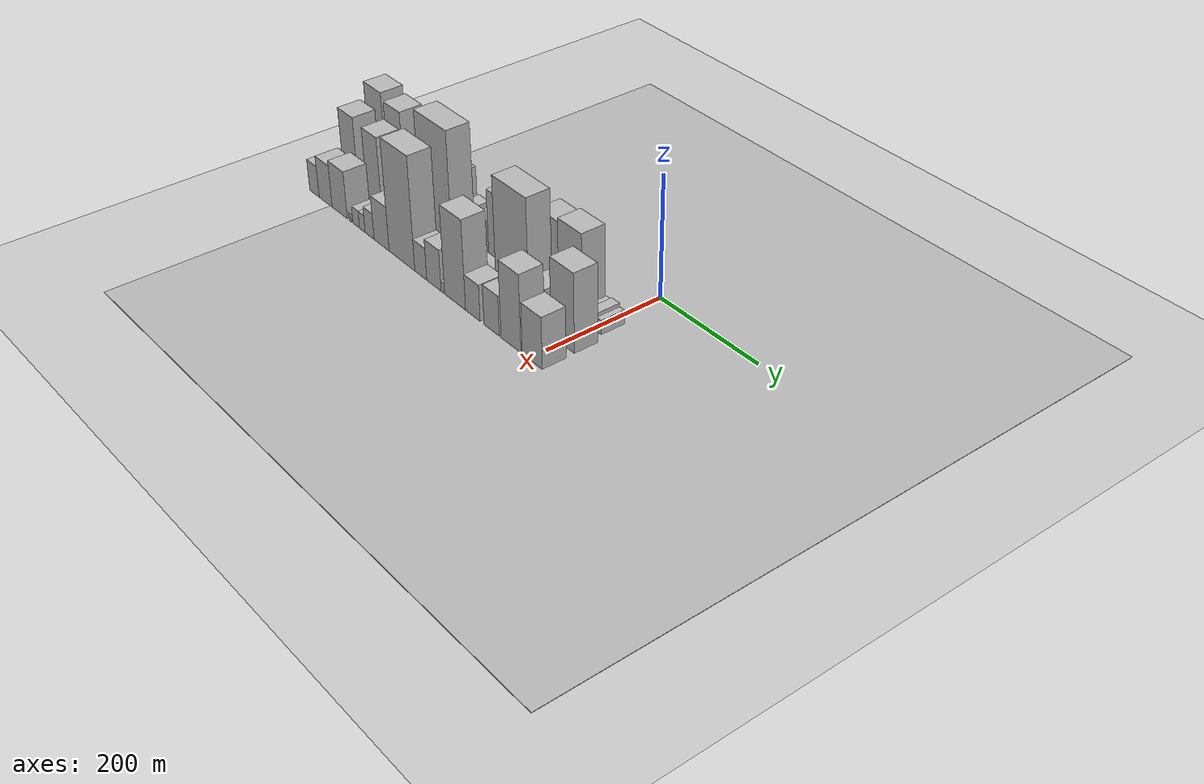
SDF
<sdf version="1.6">
 <world name="default">
  <include><name>ground_plane_1</name><uri>model://HANNAS_ground_plane</uri></include>
  <include>
   <name>ground_plane_2</name>
   <uri>model://HANNAS_ground_plane</uri>
   <pose>100 0 0  0 0 0</pose>
  </include>
  <model name="building_1">
   <static>1</static>
   <pose>100.0000 -536.4117 0 0.000000 0.000000 0.000000</pose>
   <link name="link">
    <pose>0 0 75.00 0 0 0</pose>
    <collision name="collision"><geometry><box><size>40.0000 47.1765 150.0000</size></box></geometry></collision>
    <visual name="visual">
     <cast_shadows>0</cast_shadows>
     <geometry><box><size>40.0000 47.1765 150.0000</size></box></geometry>
     <material>
      <script>
       <uri>model://HANNAS_wall/materials/scripts</uri>
       <uri>model://HANNAS_wall/materials/textures</uri>
       <name>vrc/HANNAS_wall</name>
      </script>
     </material>
    </visual>
   </link>
  </model>
  <model name="building_2">
   <static>1</static>
   <pose>100.0000 -484.9652 0 0.000000 0.000000 0.000000</pose>
   <link name="link">
    <pose>0 0 69.00 0 0 0</pose>
    <collision name="collision"><geometry><box><size>40.0000 43.7165 138.0000</size></box></geometry></collision>
    <visual name="visual">
     <cast_shadows>0</cast_shadows>
     <geometry><box><size>40.0000 43.7165 138.0000</size></box></geometry>
     <material>
      <script>
       <uri>model://HANNAS_wall/materials/scripts</uri>
       <uri>model://HANNAS_wall/materials/textures</uri>
       <name>vrc/HANNAS_wall</name>
      </script>
     </material>
    </visual>
   </link>
  </model>
  <model name="building_3">
   <static>1</static>
   <pose>100.0000 -458.6917 0 0.000000 0.000000 0.000000</pose>
   <link name="link">
    <pose>0 0 10.50 0 0 0</pose>
    <collision name="collision"><geometry><box><size>40.0000 8.8305 21.0000</size></box></geometry></collision>
    <visual name="visual">
     <cast_shadows>0</cast_shadows>
     <geometry><box><size>40.0000 8.8305 21.0000</size></box></geometry>
     <material>
      <script>
       <uri>model://HANNAS_wall/materials/scripts</uri>
       <uri>model://HANNAS_wall/materials/textures</uri>
       <name>vrc/HANNAS_wall</name>
      </script>
     </material>
    </visual>
   </link>
  </model>
  <model name="building_4">
   <static>1</static>
   <pose>100.0000 -440.6678 0 0.000000 0.000000 0.000000</pose>
   <link name="link">
    <pose>0 0 25.50 0 0 0</pose>
    <collision name="collision"><geometry><box><size>40.0000 27.2174 51.0000</size></box></geometry></collision>
    <visual name="visual">
     <cast_shadows>0</cast_shadows>
     <geometry><box><size>40.0000 27.2174 51.0000</size></box></geometry>
     <material>
      <script>
       <uri>model://HANNAS_wall/materials/scripts</uri>
       <uri>model://HANNAS_wall/materials/textures</uri>
       <name>vrc/HANNAS_wall</name>
      </script>
     </material>
    </visual>
   </link>
  </model>
  <model name="building_5">
   <static>1</static>
   <pose>100.0000 -422.9200 0 0.000000 0.000000 0.000000</pose>
   <link name="link">
    <pose>0 0 9.00 0 0 0</pose>
    <collision name="collision"><geometry><box><size>40.0000 8.2782 18.0000</size></box></geometry></collision>
    <visual name="visual">
     <cast_shadows>0</cast_shadows>
     <geometry><box><size>40.0000 8.2782 18.0000</size></box></geometry>
     <material>
      <script>
       <uri>model://HANNAS_wall/materials/scripts</uri>
       <uri>model://HANNAS_wall/materials/textures</uri>
       <name>vrc/HANNAS_wall</name>
      </script>
     </material>
    </visual>
   </link>
  </model>
  <model name="building_6">
   <static>1</static>
   <pose>100.0000 -398.1051 0 0.000000 0.000000 0.000000</pose>
   <link name="link">
    <pose>0 0 27.00 0 0 0</pose>
    <collision name="collision"><geometry><box><size>40.0000 29.3515 54.0000</size></box></geometry></collision>
    <visual name="visual">
     <cast_shadows>0</cast_shadows>
     <geometry><box><size>40.0000 29.3515 54.0000</size></box></geometry>
     <material>
      <script>
       <uri>model://HANNAS_wall/materials/scripts</uri>
       <uri>model://HANNAS_wall/materials/textures</uri>
       <name>vrc/HANNAS_wall</name>
      </script>
     </material>
    </visual>
   </link>
  </model>
  <model name="building_7">
   <static>1</static>
   <pose>100.0000 -369.2697 0 0.000000 0.000000 0.000000</pose>
   <link name="link">
    <pose>0 0 24.00 0 0 0</pose>
    <collision name="collision"><geometry><box><size>40.0000 28.3194 48.0000</size></box></geometry></collision>
    <visual name="visual">
     <cast_shadows>0</cast_shadows>
     <geometry><box><size>40.0000 28.3194 48.0000</size></box></geometry>
     <material>
      <script>
       <uri>model://HANNAS_wall/materials/scripts</uri>
       <uri>model://HANNAS_wall/materials/textures</uri>
       <name>vrc/HANNAS_wall</name>
      </script>
     </material>
    </visual>
   </link>
  </model>
  <model name="building_8">
   <static>1</static>
   <pose>100.0000 -340.9920 0 0.000000 0.000000 0.000000</pose>
   <link name="link">
    <pose>0 0 46.50 0 0 0</pose>
    <collision name="collision"><geometry><box><size>40.0000 28.2359 93.0000</size></box></geometry></collision>
    <visual name="visual">
     <cast_shadows>0</cast_shadows>
     <geometry><box><size>40.0000 28.2359 93.0000</size></box></geometry>
     <material>
      <script>
       <uri>model://HANNAS_wall/materials/scripts</uri>
       <uri>model://HANNAS_wall/materials/textures</uri>
       <name>vrc/HANNAS_wall</name>
      </script>
     </material>
    </visual>
   </link>
  </model>
  <model name="building_9">
   <static>1</static>
   <pose>100.0000 -308.1713 0 0.000000 0.000000 0.000000</pose>
   <link name="link">
    <pose>0 0 24.00 0 0 0</pose>
    <collision name="collision"><geometry><box><size>40.0000 25.4055 48.0000</size></box></geometry></collision>
    <visual name="visual">
     <cast_shadows>0</cast_shadows>
     <geometry><box><size>40.0000 25.4055 48.0000</size></box></geometry>
     <material>
      <script>
       <uri>model://HANNAS_wall/materials/scripts</uri>
       <uri>model://HANNAS_wall/materials/textures</uri>
       <name>vrc/HANNAS_wall</name>
      </script>
     </material>
    </visual>
   </link>
  </model>
  <model name="building_10">
   <static>1</static>
   <pose>100.0000 -290.2716 0 0.000000 0.000000 0.000000</pose>
   <link name="link">
    <pose>0 0 12.00 0 0 0</pose>
    <collision name="collision"><geometry><box><size>40.0000 10.3939 24.0000</size></box></geometry></collision>
    <visual name="visual">
     <cast_shadows>0</cast_shadows>
     <geometry><box><size>40.0000 10.3939 24.0000</size></box></geometry>
     <material>
      <script>
       <uri>model://HANNAS_wall/materials/scripts</uri>
       <uri>model://HANNAS_wall/materials/textures</uri>
       <name>vrc/HANNAS_wall</name>
      </script>
     </material>
    </visual>
   </link>
  </model>
  <model name="building_11">
   <static>1</static>
   <pose>100.0000 -278.9836 0 0.000000 0.000000 0.000000</pose>
   <link name="link">
    <pose>0 0 7.50 0 0 0</pose>
    <collision name="collision"><geometry><box><size>40.0000 6.1822 15.0000</size></box></geometry></collision>
    <visual name="visual">
     <cast_shadows>0</cast_shadows>
     <geometry><box><size>40.0000 6.1822 15.0000</size></box></geometry>
     <material>
      <script>
       <uri>model://HANNAS_wall/materials/scripts</uri>
       <uri>model://HANNAS_wall/materials/textures</uri>
       <name>vrc/HANNAS_wall</name>
      </script>
     </material>
    </visual>
   </link>
  </model>
  <model name="building_12">
   <static>1</static>
   <pose>100.0000 -260.1429 0 0.000000 0.000000 0.000000</pose>
   <link name="link">
    <pose>0 0 27.00 0 0 0</pose>
    <collision name="collision"><geometry><box><size>40.0000 31.4992 54.0000</size></box></geometry></collision>
    <visual name="visual">
     <cast_shadows>0</cast_shadows>
     <geometry><box><size>40.0000 31.4992 54.0000</size></box></geometry>
     <material>
      <script>
       <uri>model://HANNAS_wall/materials/scripts</uri>
       <uri>model://HANNAS_wall/materials/textures</uri>
       <name>vrc/HANNAS_wall</name>
      </script>
     </material>
    </visual>
   </link>
  </model>
  <model name="building_13">
   <static>1</static>
   <pose>100.0000 -223.2417 0 0.000000 0.000000 0.000000</pose>
   <link name="link">
    <pose>0 0 54.00 0 0 0</pose>
    <collision name="collision"><geometry><box><size>40.0000 42.3031 108.0000</size></box></geometry></collision>
    <visual name="visual">
     <cast_shadows>0</cast_shadows>
     <geometry><box><size>40.0000 42.3031 108.0000</size></box></geometry>
     <material>
      <script>
       <uri>model://HANNAS_wall/materials/scripts</uri>
       <uri>model://HANNAS_wall/materials/textures</uri>
       <name>vrc/HANNAS_wall</name>
      </script>
     </material>
    </visual>
   </link>
  </model>
  <model name="building_14">
   <static>1</static>
   <pose>100.0000 -182.0863 0 0.000000 0.000000 0.000000</pose>
   <link name="link">
    <pose>0 0 28.50 0 0 0</pose>
    <collision name="collision"><geometry><box><size>40.0000 34.0078 57.0000</size></box></geometry></collision>
    <visual name="visual">
     <cast_shadows>0</cast_shadows>
     <geometry><box><size>40.0000 34.0078 57.0000</size></box></geometry>
     <material>
      <script>
       <uri>model://HANNAS_wall/materials/scripts</uri>
       <uri>model://HANNAS_wall/materials/textures</uri>
       <name>vrc/HANNAS_wall</name>
      </script>
     </material>
    </visual>
   </link>
  </model>
  <model name="building_15">
   <static>1</static>
   <pose>100.0000 -141.8271 0 0.000000 0.000000 0.000000</pose>
   <link name="link">
    <pose>0 0 49.50 0 0 0</pose>
    <collision name="collision"><geometry><box><size>40.0000 38.5107 99.0000</size></box></geometry></collision>
    <visual name="visual">
     <cast_shadows>0</cast_shadows>
     <geometry><box><size>40.0000 38.5107 99.0000</size></box></geometry>
     <material>
      <script>
       <uri>model://HANNAS_wall/materials/scripts</uri>
       <uri>model://HANNAS_wall/materials/textures</uri>
       <name>vrc/HANNAS_wall</name>
      </script>
     </material>
    </visual>
   </link>
  </model>
  <model name="building_16">
   <static>1</static>
   <pose>100.0000 -100.0000 0 0.000000 0.000000 0.000000</pose>
   <link name="link">
    <pose>0 0 67.50 0 0 0</pose>
    <collision name="collision"><geometry><box><size>40.0000 45.1434 135.0000</size></box></geometry></collision>
    <visual name="visual">
     <cast_shadows>0</cast_shadows>
     <geometry><box><size>40.0000 45.1434 135.0000</size></box></geometry>
     <material>
      <script>
       <uri>model://HANNAS_wall/materials/scripts</uri>
       <uri>model://HANNAS_wall/materials/textures</uri>
       <name>vrc/HANNAS_wall</name>
      </script>
     </material>
    </visual>
   </link>
  </model>
  <model name="building_17">
   <static>1</static>
   <pose>100.0000 -51.3280 0 0.000000 0.000000 0.000000</pose>
   <link name="link">
    <pose>0 0 70.50 0 0 0</pose>
    <collision name="collision"><geometry><box><size>40.0000 52.2006 141.0000</size></box></geometry></collision>
    <visual name="visual">
     <cast_shadows>0</cast_shadows>
     <geometry><box><size>40.0000 52.2006 141.0000</size></box></geometry>
     <material>
      <script>
       <uri>model://HANNAS_wall/materials/scripts</uri>
       <uri>model://HANNAS_wall/materials/textures</uri>
       <name>vrc/HANNAS_wall</name>
      </script>
     </material>
    </visual>
   </link>
  </model>
  <model name="building_18">
   <static>1</static>
   <pose>100.0000 -15.4119 0 0.000000 0.000000 0.000000</pose>
   <link name="link">
    <pose>0 0 13.50 0 0 0</pose>
    <collision name="collision"><geometry><box><size>40.0000 11.6316 27.0000</size></box></geometry></collision>
    <visual name="visual">
     <cast_shadows>0</cast_shadows>
     <geometry><box><size>40.0000 11.6316 27.0000</size></box></geometry>
     <material>
      <script>
       <uri>model://HANNAS_wall/materials/scripts</uri>
       <uri>model://HANNAS_wall/materials/textures</uri>
       <name>vrc/HANNAS_wall</name>
      </script>
     </material>
    </visual>
   </link>
  </model>
  <model name="building_19">
   <static>1</static>
   <pose>100.0000 -1.0945 0 0.000000 0.000000 0.000000</pose>
   <link name="link">
    <pose>0 0 15.00 0 0 0</pose>
    <collision name="collision"><geometry><box><size>40.0000 17.0032 30.0000</size></box></geometry></collision>
    <visual name="visual">
     <cast_shadows>0</cast_shadows>
     <geometry><box><size>40.0000 17.0032 30.0000</size></box></geometry>
     <material>
      <script>
       <uri>model://HANNAS_wall/materials/scripts</uri>
       <uri>model://HANNAS_wall/materials/textures</uri>
       <name>vrc/HANNAS_wall</name>
      </script>
     </material>
    </visual>
   </link>
  </model>
  <model name="building_20">
   <static>1</static>
   <pose>100.0000 12.2904 0 0.000000 0.000000 0.000000</pose>
   <link name="link">
    <pose>0 0 12.00 0 0 0</pose>
    <collision name="collision"><geometry><box><size>40.0000 9.7668 24.0000</size></box></geometry></collision>
    <visual name="visual">
     <cast_shadows>0</cast_shadows>
     <geometry><box><size>40.0000 9.7668 24.0000</size></box></geometry>
     <material>
      <script>
       <uri>model://HANNAS_wall/materials/scripts</uri>
       <uri>model://HANNAS_wall/materials/textures</uri>
       <name>vrc/HANNAS_wall</name>
      </script>
     </material>
    </visual>
   </link>
  </model>
  <model name="building_37">
   <static>1</static>
   <pose>155.0000 -554.2638 0 0.000000 0.000000 0.000000</pose>
   <link name="link">
    <pose>0 0 12.00 0 0 0</pose>
    <collision name="collision"><geometry><box><size>40.0000 11.4725 24.0000</size></box></geometry></collision>
    <visual name="visual">
     <cast_shadows>0</cast_shadows>
     <geometry><box><size>40.0000 11.4725 24.0000</size></box></geometry>
     <material>
      <script>
       <uri>model://HANNAS_wall/materials/scripts</uri>
       <uri>model://HANNAS_wall/materials/textures</uri>
       <name>vrc/HANNAS_wall</name>
      </script>
     </material>
    </visual>
   </link>
  </model>
  <model name="building_38">
   <static>1</static>
   <pose>155.0000 -527.9098 0 0.000000 0.000000 0.000000</pose>
   <link name="link">
    <pose>0 0 64.50 0 0 0</pose>
    <collision name="collision"><geometry><box><size>40.0000 41.2353 129.0000</size></box></geometry></collision>
    <visual name="visual">
     <cast_shadows>0</cast_shadows>
     <geometry><box><size>40.0000 41.2353 129.0000</size></box></geometry>
     <material>
      <script>
       <uri>model://HANNAS_wall/materials/scripts</uri>
       <uri>model://HANNAS_wall/materials/textures</uri>
       <name>vrc/HANNAS_wall</name>
      </script>
     </material>
    </visual>
   </link>
  </model>
  <model name="building_39">
   <static>1</static>
   <pose>155.0000 -497.3662 0 0.000000 0.000000 0.000000</pose>
   <link name="link">
    <pose>0 0 18.00 0 0 0</pose>
    <collision name="collision"><geometry><box><size>40.0000 19.8519 36.0000</size></box></geometry></collision>
    <visual name="visual">
     <cast_shadows>0</cast_shadows>
     <geometry><box><size>40.0000 19.8519 36.0000</size></box></geometry>
     <material>
      <script>
       <uri>model://HANNAS_wall/materials/scripts</uri>
       <uri>model://HANNAS_wall/materials/textures</uri>
       <name>vrc/HANNAS_wall</name>
      </script>
     </material>
    </visual>
   </link>
  </model>
  <model name="building_40">
   <static>1</static>
   <pose>155.0000 -463.4504 0 0.000000 0.000000 0.000000</pose>
   <link name="link">
    <pose>0 0 61.50 0 0 0</pose>
    <collision name="collision"><geometry><box><size>40.0000 39.9797 123.0000</size></box></geometry></collision>
    <visual name="visual">
     <cast_shadows>0</cast_shadows>
     <geometry><box><size>40.0000 39.9797 123.0000</size></box></geometry>
     <material>
      <script>
       <uri>model://HANNAS_wall/materials/scripts</uri>
       <uri>model://HANNAS_wall/materials/textures</uri>
       <name>vrc/HANNAS_wall</name>
      </script>
     </material>
    </visual>
   </link>
  </model>
  <model name="building_41">
   <static>1</static>
   <pose>155.0000 -437.8659 0 0.000000 0.000000 0.000000</pose>
   <link name="link">
    <pose>0 0 12.00 0 0 0</pose>
    <collision name="collision"><geometry><box><size>40.0000 11.1893 24.0000</size></box></geometry></collision>
    <visual name="visual">
     <cast_shadows>0</cast_shadows>
     <geometry><box><size>40.0000 11.1893 24.0000</size></box></geometry>
     <material>
      <script>
       <uri>model://HANNAS_wall/materials/scripts</uri>
       <uri>model://HANNAS_wall/materials/textures</uri>
       <name>vrc/HANNAS_wall</name>
      </script>
     </material>
    </visual>
   </link>
  </model>
  <model name="building_42">
   <static>1</static>
   <pose>155.0000 -421.8312 0 0.000000 0.000000 0.000000</pose>
   <link name="link">
    <pose>0 0 19.50 0 0 0</pose>
    <collision name="collision"><geometry><box><size>40.0000 20.8799 39.0000</size></box></geometry></collision>
    <visual name="visual">
     <cast_shadows>0</cast_shadows>
     <geometry><box><size>40.0000 20.8799 39.0000</size></box></geometry>
     <material>
      <script>
       <uri>model://HANNAS_wall/materials/scripts</uri>
       <uri>model://HANNAS_wall/materials/textures</uri>
       <name>vrc/HANNAS_wall</name>
      </script>
     </material>
    </visual>
   </link>
  </model>
  <model name="building_43">
   <static>1</static>
   <pose>155.0000 -395.8094 0 0.000000 0.000000 0.000000</pose>
   <link name="link">
    <pose>0 0 27.00 0 0 0</pose>
    <collision name="collision"><geometry><box><size>40.0000 31.1637 54.0000</size></box></geometry></collision>
    <visual name="visual">
     <cast_shadows>0</cast_shadows>
     <geometry><box><size>40.0000 31.1637 54.0000</size></box></geometry>
     <material>
      <script>
       <uri>model://HANNAS_wall/materials/scripts</uri>
       <uri>model://HANNAS_wall/materials/textures</uri>
       <name>vrc/HANNAS_wall</name>
      </script>
     </material>
    </visual>
   </link>
  </model>
  <model name="building_44">
   <static>1</static>
   <pose>155.0000 -357.2850 0 0.000000 0.000000 0.000000</pose>
   <link name="link">
    <pose>0 0 63.00 0 0 0</pose>
    <collision name="collision"><geometry><box><size>40.0000 45.8852 126.0000</size></box></geometry></collision>
    <visual name="visual">
     <cast_shadows>0</cast_shadows>
     <geometry><box><size>40.0000 45.8852 126.0000</size></box></geometry>
     <material>
      <script>
       <uri>model://HANNAS_wall/materials/scripts</uri>
       <uri>model://HANNAS_wall/materials/textures</uri>
       <name>vrc/HANNAS_wall</name>
      </script>
     </material>
    </visual>
   </link>
  </model>
  <model name="building_45">
   <static>1</static>
   <pose>155.0000 -294.8767 0 0.000000 0.000000 0.000000</pose>
   <link name="link">
    <pose>0 0 108.00 0 0 0</pose>
    <collision name="collision"><geometry><box><size>40.0000 78.9314 216.0000</size></box></geometry></collision>
    <visual name="visual">
     <cast_shadows>0</cast_shadows>
     <geometry><box><size>40.0000 78.9314 216.0000</size></box></geometry>
     <material>
      <script>
       <uri>model://HANNAS_wall/materials/scripts</uri>
       <uri>model://HANNAS_wall/materials/textures</uri>
       <name>vrc/HANNAS_wall</name>
      </script>
     </material>
    </visual>
   </link>
  </model>
  <model name="building_46">
   <static>1</static>
   <pose>155.0000 -110.9300 0 0.000000 0.000000 0.000000</pose>
   <link name="link">
    <pose>0 0 97.50 0 0 0</pose>
    <collision name="collision"><geometry><box><size>40.0000 76.3207 195.0000</size></box></geometry></collision>
    <visual name="visual">
     <cast_shadows>0</cast_shadows>
     <geometry><box><size>40.0000 76.3207 195.0000</size></box></geometry>
     <material>
      <script>
       <uri>model://HANNAS_wall/materials/scripts</uri>
       <uri>model://HANNAS_wall/materials/textures</uri>
       <name>vrc/HANNAS_wall</name>
      </script>
     </material>
    </visual>
   </link>
  </model>
  <model name="building_47">
   <static>1</static>
   <pose>155.0000 -54.3617 0 0.000000 0.000000 0.000000</pose>
   <link name="link">
    <pose>0 0 34.50 0 0 0</pose>
    <collision name="collision"><geometry><box><size>40.0000 36.8159 69.0000</size></box></geometry></collision>
    <visual name="visual">
     <cast_shadows>0</cast_shadows>
     <geometry><box><size>40.0000 36.8159 69.0000</size></box></geometry>
     <material>
      <script>
       <uri>model://HANNAS_wall/materials/scripts</uri>
       <uri>model://HANNAS_wall/materials/textures</uri>
       <name>vrc/HANNAS_wall</name>
      </script>
     </material>
    </visual>
   </link>
  </model>
  <model name="building_48">
   <static>1</static>
   <pose>155.0000 -27.6196 0 0.000000 0.000000 0.000000</pose>
   <link name="link">
    <pose>0 0 10.50 0 0 0</pose>
    <collision name="collision"><geometry><box><size>40.0000 8.6682 21.0000</size></box></geometry></collision>
    <visual name="visual">
     <cast_shadows>0</cast_shadows>
     <geometry><box><size>40.0000 8.6682 21.0000</size></box></geometry>
     <material>
      <script>
       <uri>model://HANNAS_wall/materials/scripts</uri>
       <uri>model://HANNAS_wall/materials/textures</uri>
       <name>vrc/HANNAS_wall</name>
      </script>
     </material>
    </visual>
   </link>
  </model>
  <model name="building_49">
   <static>1</static>
   <pose>155.0000 2.4574 0 0.000000 0.000000 0.000000</pose>
   <link name="link">
    <pose>0 0 64.50 0 0 0</pose>
    <collision name="collision"><geometry><box><size>40.0000 51.4859 129.0000</size></box></geometry></collision>
    <visual name="visual">
     <cast_shadows>0</cast_shadows>
     <geometry><box><size>40.0000 51.4859 129.0000</size></box></geometry>
     <material>
      <script>
       <uri>model://HANNAS_wall/materials/scripts</uri>
       <uri>model://HANNAS_wall/materials/textures</uri>
       <name>vrc/HANNAS_wall</name>
      </script>
     </material>
    </visual>
   </link>
  </model>
  <model name="building_68">
   <static>1</static>
   <pose>210.0000 -546.3157 0 0.000000 0.000000 0.000000</pose>
   <link name="link">
    <pose>0 0 27.00 0 0 0</pose>
    <collision name="collision"><geometry><box><size>40.0000 27.3687 54.0000</size></box></geometry></collision>
    <visual name="visual">
     <cast_shadows>0</cast_shadows>
     <geometry><box><size>40.0000 27.3687 54.0000</size></box></geometry>
     <material>
      <script>
       <uri>model://HANNAS_wall/materials/scripts</uri>
       <uri>model://HANNAS_wall/materials/textures</uri>
       <name>vrc/HANNAS_wall</name>
      </script>
     </material>
    </visual>
   </link>
  </model>
  <model name="building_69">
   <static>1</static>
   <pose>210.0000 -513.8910 0 0.000000 0.000000 0.000000</pose>
   <link name="link">
    <pose>0 0 36.00 0 0 0</pose>
    <collision name="collision"><geometry><box><size>40.0000 37.4807 72.0000</size></box></geometry></collision>
    <visual name="visual">
     <cast_shadows>0</cast_shadows>
     <geometry><box><size>40.0000 37.4807 72.0000</size></box></geometry>
     <material>
      <script>
       <uri>model://HANNAS_wall/materials/scripts</uri>
       <uri>model://HANNAS_wall/materials/textures</uri>
       <name>vrc/HANNAS_wall</name>
      </script>
     </material>
    </visual>
   </link>
  </model>
  <model name="building_70">
   <static>1</static>
   <pose>210.0000 -473.7589 0 0.000000 0.000000 0.000000</pose>
   <link name="link">
    <pose>0 0 40.50 0 0 0</pose>
    <collision name="collision"><geometry><box><size>40.0000 42.7835 81.0000</size></box></geometry></collision>
    <visual name="visual">
     <cast_shadows>0</cast_shadows>
     <geometry><box><size>40.0000 42.7835 81.0000</size></box></geometry>
     <material>
      <script>
       <uri>model://HANNAS_wall/materials/scripts</uri>
       <uri>model://HANNAS_wall/materials/textures</uri>
       <name>vrc/HANNAS_wall</name>
      </script>
     </material>
    </visual>
   </link>
  </model>
  <model name="building_71">
   <static>1</static>
   <pose>210.0000 -443.9594 0 0.000000 0.000000 0.000000</pose>
   <link name="link">
    <pose>0 0 7.50 0 0 0</pose>
    <collision name="collision"><geometry><box><size>40.0000 6.8155 15.0000</size></box></geometry></collision>
    <visual name="visual">
     <cast_shadows>0</cast_shadows>
     <geometry><box><size>40.0000 6.8155 15.0000</size></box></geometry>
     <material>
      <script>
       <uri>model://HANNAS_wall/materials/scripts</uri>
       <uri>model://HANNAS_wall/materials/textures</uri>
       <name>vrc/HANNAS_wall</name>
      </script>
     </material>
    </visual>
   </link>
  </model>
  <model name="building_72">
   <static>1</static>
   <pose>210.0000 -427.6320 0 0.000000 0.000000 0.000000</pose>
   <link name="link">
    <pose>0 0 15.00 0 0 0</pose>
    <collision name="collision"><geometry><box><size>40.0000 17.8393 30.0000</size></box></geometry></collision>
    <visual name="visual">
     <cast_shadows>0</cast_shadows>
     <geometry><box><size>40.0000 17.8393 30.0000</size></box></geometry>
     <material>
      <script>
       <uri>model://HANNAS_wall/materials/scripts</uri>
       <uri>model://HANNAS_wall/materials/textures</uri>
       <name>vrc/HANNAS_wall</name>
      </script>
     </material>
    </visual>
   </link>
  </model>
  <model name="building_73">
   <static>1</static>
   <pose>210.0000 -411.0139 0 0.000000 0.000000 0.000000</pose>
   <link name="link">
    <pose>0 0 15.00 0 0 0</pose>
    <collision name="collision"><geometry><box><size>40.0000 15.3969 30.0000</size></box></geometry></collision>
    <visual name="visual">
     <cast_shadows>0</cast_shadows>
     <geometry><box><size>40.0000 15.3969 30.0000</size></box></geometry>
     <material>
      <script>
       <uri>model://HANNAS_wall/materials/scripts</uri>
       <uri>model://HANNAS_wall/materials/textures</uri>
       <name>vrc/HANNAS_wall</name>
      </script>
     </material>
    </visual>
   </link>
  </model>
  <model name="building_74">
   <static>1</static>
   <pose>210.0000 -391.0332 0 0.000000 0.000000 0.000000</pose>
   <link name="link">
    <pose>0 0 22.50 0 0 0</pose>
    <collision name="collision"><geometry><box><size>40.0000 24.5645 45.0000</size></box></geometry></collision>
    <visual name="visual">
     <cast_shadows>0</cast_shadows>
     <geometry><box><size>40.0000 24.5645 45.0000</size></box></geometry>
     <material>
      <script>
       <uri>model://HANNAS_wall/materials/scripts</uri>
       <uri>model://HANNAS_wall/materials/textures</uri>
       <name>vrc/HANNAS_wall</name>
      </script>
     </material>
    </visual>
   </link>
  </model>
  <model name="building_75">
   <static>1</static>
   <pose>210.0000 -358.6321 0 0.000000 0.000000 0.000000</pose>
   <link name="link">
    <pose>0 0 37.50 0 0 0</pose>
    <collision name="collision"><geometry><box><size>40.0000 40.2377 75.0000</size></box></geometry></collision>
    <visual name="visual">
     <cast_shadows>0</cast_shadows>
     <geometry><box><size>40.0000 40.2377 75.0000</size></box></geometry>
     <material>
      <script>
       <uri>model://HANNAS_wall/materials/scripts</uri>
       <uri>model://HANNAS_wall/materials/textures</uri>
       <name>vrc/HANNAS_wall</name>
      </script>
     </material>
    </visual>
   </link>
  </model>
  <model name="building_76">
   <static>1</static>
   <pose>210.0000 -305.0166 0 0.000000 0.000000 0.000000</pose>
   <link name="link">
    <pose>0 0 94.50 0 0 0</pose>
    <collision name="collision"><geometry><box><size>40.0000 66.9933 189.0000</size></box></geometry></collision>
    <visual name="visual">
     <cast_shadows>0</cast_shadows>
     <geometry><box><size>40.0000 66.9933 189.0000</size></box></geometry>
     <material>
      <script>
       <uri>model://HANNAS_wall/materials/scripts</uri>
       <uri>model://HANNAS_wall/materials/textures</uri>
       <name>vrc/HANNAS_wall</name>
      </script>
     </material>
    </visual>
   </link>
  </model>
  <model name="building_77">
   <static>1</static>
   <pose>210.0000 -256.4347 0 0.000000 0.000000 0.000000</pose>
   <link name="link">
    <pose>0 0 27.00 0 0 0</pose>
    <collision name="collision"><geometry><box><size>40.0000 30.1704 54.0000</size></box></geometry></collision>
    <visual name="visual">
     <cast_shadows>0</cast_shadows>
     <geometry><box><size>40.0000 30.1704 54.0000</size></box></geometry>
     <material>
      <script>
       <uri>model://HANNAS_wall/materials/scripts</uri>
       <uri>model://HANNAS_wall/materials/textures</uri>
       <name>vrc/HANNAS_wall</name>
      </script>
     </material>
    </visual>
   </link>
  </model>
  <model name="building_78">
   <static>1</static>
   <pose>210.0000 -223.4032 0 0.000000 0.000000 0.000000</pose>
   <link name="link">
    <pose>0 0 34.50 0 0 0</pose>
    <collision name="collision"><geometry><box><size>40.0000 35.8927 69.0000</size></box></geometry></collision>
    <visual name="visual">
     <cast_shadows>0</cast_shadows>
     <geometry><box><size>40.0000 35.8927 69.0000</size></box></geometry>
     <material>
      <script>
       <uri>model://HANNAS_wall/materials/scripts</uri>
       <uri>model://HANNAS_wall/materials/textures</uri>
       <name>vrc/HANNAS_wall</name>
      </script>
     </material>
    </visual>
   </link>
  </model>
  <model name="building_79">
   <static>1</static>
   <pose>210.0000 -201.1148 0 0.000000 0.000000 0.000000</pose>
   <link name="link">
    <pose>0 0 9.00 0 0 0</pose>
    <collision name="collision"><geometry><box><size>40.0000 8.6841 18.0000</size></box></geometry></collision>
    <visual name="visual">
     <cast_shadows>0</cast_shadows>
     <geometry><box><size>40.0000 8.6841 18.0000</size></box></geometry>
     <material>
      <script>
       <uri>model://HANNAS_wall/materials/scripts</uri>
       <uri>model://HANNAS_wall/materials/textures</uri>
       <name>vrc/HANNAS_wall</name>
      </script>
     </material>
    </visual>
   </link>
  </model>
  <model name="building_80">
   <static>1</static>
   <pose>210.0000 -171.3349 0 0.000000 0.000000 0.000000</pose>
   <link name="link">
    <pose>0 0 73.50 0 0 0</pose>
    <collision name="collision"><geometry><box><size>40.0000 50.8756 147.0000</size></box></geometry></collision>
    <visual name="visual">
     <cast_shadows>0</cast_shadows>
     <geometry><box><size>40.0000 50.8756 147.0000</size></box></geometry>
     <material>
      <script>
       <uri>model://HANNAS_wall/materials/scripts</uri>
       <uri>model://HANNAS_wall/materials/textures</uri>
       <name>vrc/HANNAS_wall</name>
      </script>
     </material>
    </visual>
   </link>
  </model>
  <model name="building_81">
   <static>1</static>
   <pose>210.0000 -128.5498 0 0.000000 0.000000 0.000000</pose>
   <link name="link">
    <pose>0 0 30.00 0 0 0</pose>
    <collision name="collision"><geometry><box><size>40.0000 34.6947 60.0000</size></box></geometry></collision>
    <visual name="visual">
     <cast_shadows>0</cast_shadows>
     <geometry><box><size>40.0000 34.6947 60.0000</size></box></geometry>
     <material>
      <script>
       <uri>model://HANNAS_wall/materials/scripts</uri>
       <uri>model://HANNAS_wall/materials/textures</uri>
       <name>vrc/HANNAS_wall</name>
      </script>
     </material>
    </visual>
   </link>
  </model>
  <model name="building_82">
   <static>1</static>
   <pose>210.0000 -84.4028 0 0.000000 0.000000 0.000000</pose>
   <link name="link">
    <pose>0 0 33.00 0 0 0</pose>
    <collision name="collision"><geometry><box><size>40.0000 35.5993 66.0000</size></box></geometry></collision>
    <visual name="visual">
     <cast_shadows>0</cast_shadows>
     <geometry><box><size>40.0000 35.5993 66.0000</size></box></geometry>
     <material>
      <script>
       <uri>model://HANNAS_wall/materials/scripts</uri>
       <uri>model://HANNAS_wall/materials/textures</uri>
       <name>vrc/HANNAS_wall</name>
      </script>
     </material>
    </visual>
   </link>
  </model>
  <model name="building_83">
   <static>1</static>
   <pose>210.0000 -40.0048 0 0.000000 0.000000 0.000000</pose>
   <link name="link">
    <pose>0 0 63.00 0 0 0</pose>
    <collision name="collision"><geometry><box><size>40.0000 45.1968 126.0000</size></box></geometry></collision>
    <visual name="visual">
     <cast_shadows>0</cast_shadows>
     <geometry><box><size>40.0000 45.1968 126.0000</size></box></geometry>
     <material>
      <script>
       <uri>model://HANNAS_wall/materials/scripts</uri>
       <uri>model://HANNAS_wall/materials/textures</uri>
       <name>vrc/HANNAS_wall</name>
      </script>
     </material>
    </visual>
   </link>
  </model>
  <model name="building_84">
   <static>1</static>
   <pose>210.0000 7.7388 0 0.000000 0.000000 0.000000</pose>
   <link name="link">
    <pose>0 0 42.00 0 0 0</pose>
    <collision name="collision"><geometry><box><size>40.0000 44.2904 84.0000</size></box></geometry></collision>
    <visual name="visual">
     <cast_shadows>0</cast_shadows>
     <geometry><box><size>40.0000 44.2904 84.0000</size></box></geometry>
     <material>
      <script>
       <uri>model://HANNAS_wall/materials/scripts</uri>
       <uri>model://HANNAS_wall/materials/textures</uri>
       <name>vrc/HANNAS_wall</name>
      </script>
     </material>
    </visual>
   </link>
  </model>
 </world>
</sdf>
